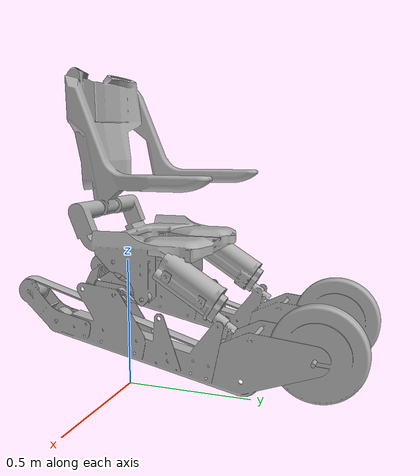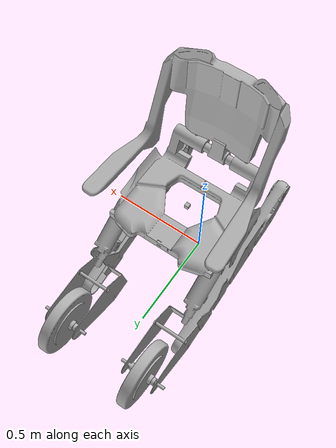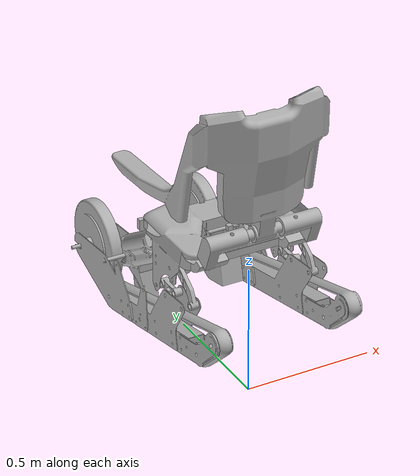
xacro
<?xml version="1.0" ?>
<robot name="robot" xmlns:xacro="http://www.ros.org/wiki/xacro">

<xacro:include filename="$(find wheelchair_isaac)/urdf/materials.xacro" />
<xacro:include filename="$(find wheelchair_isaac)/urdf/robot.trans" />
<xacro:include filename="$(find wheelchair_isaac)/urdf/robot.gazebo" />

<link name="base_footprint"/>

<link name="base_link">
  <inertial>
    <origin xyz="4.216737006355157e-05 0.14539775015650658 0.001317145519381857" rpy="0 0 0"/>
    <mass value="5.68537979998827"/>
    <inertia ixx="0.122934" iyy="0.179358" izz="0.285612" ixy="-3.1e-05" iyz="0.016444" ixz="6e-06"/>
  </inertial>
  <visual>
    <origin xyz="0 0 0" rpy="0 0 0"/>
    <geometry>
      <mesh filename="file://$(find wheelchair_isaac)/meshes/base_link.stl" scale="0.001 0.001 0.001"/>
    </geometry>
    <material name="silver"/>
  </visual>
  <collision>
    <origin xyz="0 0 0" rpy="0 0 0"/>
    <geometry>
      <mesh filename="file://$(find wheelchair_isaac)/meshes/base_link.stl" scale="0.001 0.001 0.001"/>
    </geometry>
  </collision>
</link>

<joint name="base_footprint_joint" type="fixed">
  <origin xyz="0 0 0.6" rpy="0 0 0"/>
  <parent link="base_footprint"/>
  <child link="base_link"/>
</joint>

<!-- IMU sensor link mounted at base_link center of mass -->
<link name="imu_link">
  <inertial>
    <origin xyz="0 0 0" rpy="0 0 0"/>
    <mass value="0.01"/>
    <inertia ixx="1e-06" iyy="1e-06" izz="1e-06" ixy="0" iyz="0" ixz="0"/>
  </inertial>
  <visual>
    <origin xyz="0 0 0" rpy="0 0 0"/>
    <geometry>
      <box size="0.02 0.02 0.02"/>
    </geometry>
    <material name="silver"/>
  </visual>
  <collision>
    <origin xyz="0 0 0" rpy="0 0 0"/>
    <geometry>
      <box size="0.02 0.02 0.02"/>
    </geometry>
  </collision>
</link>

<joint name="imu_joint" type="fixed">
  <origin xyz="0.0 0.145 0.001" rpy="0 0 0"/>
  <parent link="base_link"/>
  <child link="imu_link"/>
</joint>

<link name="link_1_1">
  <inertial>
    <origin xyz="0.029999999999997057 -0.05767110693379862 -0.04228443270435201" rpy="0 0 0"/>
    <mass value="0.22006973891227524"/>
    <inertia ixx="0.000725" iyy="0.000301" izz="0.000441" ixy="-0.0" iyz="-0.000324" ixz="-0.0"/>
  </inertial>
  <visual>
    <origin xyz="0.269 -0.0798 0.054998" rpy="0 0 0"/>
    <geometry>
      <mesh filename="file://$(find wheelchair_isaac)/meshes/link_1_1.stl" scale="0.001 0.001 0.001"/>
    </geometry>
    <material name="silver"/>
  </visual>
  <collision>
    <origin xyz="0.269 -0.0798 0.054998" rpy="0 0 0"/>
    <geometry>
      <mesh filename="file://$(find wheelchair_isaac)/meshes/link_1_1.stl" scale="0.001 0.001 0.001"/>
    </geometry>
  </collision>
</link>

<!-- track_left_1 first (incorrect) definition removed - duplicate caused by Fusion 360 loop export bug -->

<link name="left_wheel_1">
  <inertial>
    <origin xyz="0.07346889500880088 -2.88721996866137e-07 2.925630718242367e-07" rpy="0 0 0"/>
    <mass value="5.057776677564588"/>
    <inertia ixx="0.060549" iyy="0.031987" izz="0.031987" ixy="-0.0" iyz="0.0" ixz="0.0"/>
  </inertial>
  <visual>
    <origin xyz="0.284 -0.779417 0.322372" rpy="0 0 0"/>
    <geometry>
      <mesh filename="file://$(find wheelchair_isaac)/meshes/left_wheel_1.stl" scale="0.001 0.001 0.001"/>
    </geometry>
    <material name="silver"/>
  </visual>
  <collision>
    <origin xyz="0.284 -0.779417 0.322372" rpy="0 0 0"/>
    <geometry>
      <mesh filename="file://$(find wheelchair_isaac)/meshes/left_wheel_1.stl" scale="0.001 0.001 0.001"/>
    </geometry>
  </collision>
</link>

<link name="link_2_1">
  <inertial>
    <origin xyz="0.029999999999996974 -0.04053583985641179 0.00225104006153265" rpy="0 0 0"/>
    <mass value="0.15002189485578074"/>
    <inertia ixx="0.00025" iyy="2.8e-05" izz="0.000237" ixy="0.0" iyz="2.1e-05" ixz="-0.0"/>
  </inertial>
  <visual>
    <origin xyz="0.269 -0.185 0.179243" rpy="0 0 0"/>
    <geometry>
      <mesh filename="file://$(find wheelchair_isaac)/meshes/link_2_1.stl" scale="0.001 0.001 0.001"/>
    </geometry>
    <material name="silver"/>
  </visual>
  <collision>
    <origin xyz="0.269 -0.185 0.179243" rpy="0 0 0"/>
    <geometry>
      <mesh filename="file://$(find wheelchair_isaac)/meshes/link_2_1.stl" scale="0.001 0.001 0.001"/>
    </geometry>
  </collision>
</link>

<link name="link_1_right_1">
  <inertial>
    <origin xyz="-0.029999999999997085 -0.05767110693379844 -0.04228443270435229" rpy="0 0 0"/>
    <mass value="0.22006973891227521"/>
    <inertia ixx="0.000725" iyy="0.000301" izz="0.000441" ixy="-0.0" iyz="-0.000324" ixz="0.0"/>
  </inertial>
  <visual>
    <origin xyz="-0.269 -0.0798 0.054998" rpy="0 0 0"/>
    <geometry>
      <mesh filename="file://$(find wheelchair_isaac)/meshes/link_1_right_1.stl" scale="0.001 0.001 0.001"/>
    </geometry>
    <material name="silver"/>
  </visual>
  <collision>
    <origin xyz="-0.269 -0.0798 0.054998" rpy="0 0 0"/>
    <geometry>
      <mesh filename="file://$(find wheelchair_isaac)/meshes/link_1_right_1.stl" scale="0.001 0.001 0.001"/>
    </geometry>
  </collision>
</link>

<!-- track_right_1 first (incorrect) definition removed - duplicate caused by Fusion 360 loop export bug -->

<link name="link_2_right_1">
  <inertial>
    <origin xyz="-0.029999999999996918 -0.040535839856411765 0.002251040061532622" rpy="0 0 0"/>
    <mass value="0.15002189485578074"/>
    <inertia ixx="0.00025" iyy="2.8e-05" izz="0.000237" ixy="-0.0" iyz="2.1e-05" ixz="0.0"/>
  </inertial>
  <visual>
    <origin xyz="-0.269 -0.185 0.179243" rpy="0 0 0"/>
    <geometry>
      <mesh filename="file://$(find wheelchair_isaac)/meshes/link_2_right_1.stl" scale="0.001 0.001 0.001"/>
    </geometry>
    <material name="silver"/>
  </visual>
  <collision>
    <origin xyz="-0.269 -0.185 0.179243" rpy="0 0 0"/>
    <geometry>
      <mesh filename="file://$(find wheelchair_isaac)/meshes/link_2_right_1.stl" scale="0.001 0.001 0.001"/>
    </geometry>
  </collision>
</link>

<link name="right_wheel_1">
  <inertial>
    <origin xyz="-0.07346889500880088 -2.887219975322708e-07 2.9256307310099317e-07" rpy="0 0 0"/>
    <mass value="5.057776677564578"/>
    <inertia ixx="0.060549" iyy="0.031987" izz="0.031987" ixy="0.0" iyz="0.0" ixz="-0.0"/>
  </inertial>
  <visual>
    <origin xyz="-0.284 -0.779417 0.322372" rpy="0 0 0"/>
    <geometry>
      <mesh filename="file://$(find wheelchair_isaac)/meshes/right_wheel_1.stl" scale="0.001 0.001 0.001"/>
    </geometry>
    <material name="silver"/>
  </visual>
  <collision>
    <origin xyz="-0.284 -0.779417 0.322372" rpy="0 0 0"/>
    <geometry>
      <mesh filename="file://$(find wheelchair_isaac)/meshes/right_wheel_1.stl" scale="0.001 0.001 0.001"/>
    </geometry>
  </collision>
</link>

<link name="back_seat_1">
  <inertial>
    <origin xyz="0.06983014601031234 0.0575986230963668 0.25115136347369765" rpy="0 0 0"/>
    <mass value="8.434452375183655"/>
    <inertia ixx="0.328288" iyy="0.418377" izz="0.432904" ixy="8.5e-05" iyz="0.082281" ixz="4.4e-05"/>
  </inertial>
  <visual>
    <origin xyz="0.069733 0.090525 -0.103815" rpy="0 0 0"/>
    <geometry>
      <mesh filename="file://$(find wheelchair_isaac)/meshes/back_seat_1.stl" scale="0.001 0.001 0.001"/>
    </geometry>
    <material name="silver"/>
  </visual>
  <collision>
    <origin xyz="0.069733 0.090525 -0.103815" rpy="0 0 0"/>
    <geometry>
      <mesh filename="file://$(find wheelchair_isaac)/meshes/back_seat_1.stl" scale="0.001 0.001 0.001"/>
    </geometry>
  </collision>
</link>

<link name="track_left_1">
  <inertial>
    <origin xyz="-0.019524250228306478 0.14117949011930947 -0.07567975004266825" rpy="0 0 0"/>
    <mass value="11.29429483652691"/>
    <inertia ixx="0.94688" iyy="0.150812" izz="0.820835" ixy="-0.029005" iyz="0.041131" ixz="-0.003106"/>
  </inertial>
  <visual>
    <origin xyz="0.224 -0.088296 0.167372" rpy="0 0 0"/>
    <geometry>
      <mesh filename="file://$(find wheelchair_isaac)/meshes/track_left_1.stl" scale="0.001 0.001 0.001"/>
    </geometry>
    <material name="silver"/>
  </visual>
  <collision>
    <origin xyz="0.224 -0.088296 0.167372" rpy="0 0 0"/>
    <geometry>
      <mesh filename="file://$(find wheelchair_isaac)/meshes/track_left_1.stl" scale="0.001 0.001 0.001"/>
    </geometry>
  </collision>
</link>

<link name="track_right_1">
  <inertial>
    <origin xyz="0.019524250884706162 0.14117948537533326 -0.07567974729896407" rpy="0 0 0"/>
    <mass value="11.294294709414698"/>
    <inertia ixx="0.94688" iyy="0.150812" izz="0.820835" ixy="0.029005" iyz="0.041131" ixz="0.003106"/>
  </inertial>
  <visual>
    <origin xyz="-0.224 -0.088296 0.167372" rpy="0 0 0"/>
    <geometry>
      <mesh filename="file://$(find wheelchair_isaac)/meshes/track_right_1.stl" scale="0.001 0.001 0.001"/>
    </geometry>
    <material name="silver"/>
  </visual>
  <collision>
    <origin xyz="-0.224 -0.088296 0.167372" rpy="0 0 0"/>
    <geometry>
      <mesh filename="file://$(find wheelchair_isaac)/meshes/track_right_1.stl" scale="0.001 0.001 0.001"/>
    </geometry>
  </collision>
</link>

<joint name="base_to_link1_left" type="revolute">
  <origin xyz="-0.269 0.0798 -0.054998" rpy="0 0 0"/>
  <parent link="base_link"/>
  <child link="link_1_1"/>
  <axis xyz="-1.0 -0.0 -0.0"/>
  <limit lower="-1.5700" upper="0.0540" effort="100" velocity="1.0"/>
</joint>

<!-- link1_to_track_left joint REMOVED from URDF tree (creates kinematic loop). -->
<!-- Pin hole on link_1_1 (relative to link_1_1 frame): pos="0.045 -0.113272 -0.099807" -->

<joint name="wheel_left" type="continuous">
  <origin xyz="-0.06 0.691121 -0.155" rpy="0 0 0"/>
  <parent link="track_left_1"/>
  <child link="left_wheel_1"/>
  <axis xyz="-1.0 -0.0 -0.0"/>
</joint>

<joint name="base_to_link2_left" type="revolute">
  <origin xyz="-0.269 0.185 -0.179243" rpy="0 0 0"/>
  <parent link="base_link"/>
  <child link="link_2_1"/>
  <axis xyz="-1.0 -0.0 -0.0"/>
  <limit lower="-1.5700" upper="0.3170" effort="100" velocity="1.0"/>
</joint>

<joint name="base_to_link1_right" type="revolute">
  <origin xyz="0.269 0.0798 -0.054998" rpy="0 0 0"/>
  <parent link="base_link"/>
  <child link="link_1_right_1"/>
  <axis xyz="-1.0 0.0 0.0"/>
  <limit lower="-1.5700" upper="0.0610" effort="100" velocity="1.0"/>
</joint>

<!-- link1_to_track_right joint REMOVED from URDF tree (creates kinematic loop). -->
<!-- Pin hole on link_1_right_1 (relative to link_1_right_1 frame): pos="-0.045 -0.113272 -0.099807" -->

<joint name="base_to_link2_right" type="revolute">
  <origin xyz="0.269 0.185 -0.179243" rpy="0 0 0"/>
  <parent link="base_link"/>
  <child link="link_2_right_1"/>
  <axis xyz="-1.0 0.0 0.0"/>
  <limit lower="-1.5700" upper="0.3370" effort="100" velocity="1.0"/>
</joint>

<joint name="wheel_right" type="continuous">
  <origin xyz="0.06 0.691121 -0.155" rpy="0 0 0"/>
  <parent link="track_right_1"/>
  <child link="right_wheel_1"/>
  <axis xyz="-1.0 0.0 0.0"/>
</joint>

<joint name="base_to_backSeat" type="revolute">
  <origin xyz="-0.069733 -0.090525 0.103815" rpy="0 0 0"/>
  <parent link="base_link"/>
  <child link="back_seat_1"/>
  <axis xyz="1.0 0.0 0.0"/>
  <limit lower="0.0000" upper="0.0000" effort="200" velocity="1.0"/>
</joint>

<joint name="Revolute 38" type="continuous">
  <origin xyz="0.045 -0.096704 0.011871" rpy="0 0 0"/>
  <parent link="link_2_1"/>
  <child link="track_left_1"/>
  <axis xyz="-1.0 -0.0 -0.0"/>
</joint>

<joint name="Revolute 39" type="continuous">
  <origin xyz="-0.045 -0.096704 0.011871" rpy="0 0 0"/>
  <parent link="link_2_right_1"/>
  <child link="track_right_1"/>
  <axis xyz="-1.0 0.0 0.0"/>
</joint>

</robot>

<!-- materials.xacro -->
<robot name="my_bot_urdf" xmlns:xacro="http://www.ros.org/wiki/xacro" >

<material name="silver">
  <color rgba="0.700 0.700 0.700 1.000"/>
</material>

</robot>

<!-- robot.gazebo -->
<robot name="robot" xmlns:xacro="http://www.ros.org/wiki/xacro" >

<xacro:property name="body_color" value="Gazebo/Silver" />

<gazebo>
  <plugin filename="gz_ros2_control-system" name="gz_ros2_control::GazeboSimROS2ControlPlugin" />
</gazebo>

<gazebo reference="base_link">
  <material>${body_color}</material>
  <mu1>0.2</mu1>
  <mu2>0.2</mu2>
  <self_collide>true</self_collide>
  <gravity>true</gravity>
</gazebo>

<gazebo reference="link_1_1">
  <material>${body_color}</material>
  <mu1>0.2</mu1>
  <mu2>0.2</mu2>
  <self_collide>true</self_collide>
</gazebo>

<gazebo reference="track_left_1">
  <material>${body_color}</material>
  <mu1>0.2</mu1>
  <mu2>0.2</mu2>
  <self_collide>true</self_collide>
</gazebo>

<gazebo reference="left_wheel_1">
  <material>${body_color}</material>
  <mu1>0.2</mu1>
  <mu2>0.2</mu2>
  <self_collide>true</self_collide>
</gazebo>

<gazebo reference="link_2_1">
  <material>${body_color}</material>
  <mu1>0.2</mu1>
  <mu2>0.2</mu2>
  <self_collide>true</self_collide>
</gazebo>

<gazebo reference="link_1_right_1">
  <material>${body_color}</material>
  <mu1>0.2</mu1>
  <mu2>0.2</mu2>
  <self_collide>true</self_collide>
</gazebo>

<gazebo reference="track_right_1">
  <material>${body_color}</material>
  <mu1>0.2</mu1>
  <mu2>0.2</mu2>
  <self_collide>true</self_collide>
</gazebo>

<gazebo reference="link_2_right_1">
  <material>${body_color}</material>
  <mu1>0.2</mu1>
  <mu2>0.2</mu2>
  <self_collide>true</self_collide>
</gazebo>

<gazebo reference="right_wheel_1">
  <material>${body_color}</material>
  <mu1>0.2</mu1>
  <mu2>0.2</mu2>
  <self_collide>true</self_collide>
</gazebo>

<gazebo reference="back_seat_1">
  <material>${body_color}</material>
  <mu1>0.2</mu1>
  <mu2>0.2</mu2>
  <self_collide>true</self_collide>
</gazebo>

<gazebo reference="track_left_1">
  <material>${body_color}</material>
  <mu1>0.2</mu1>
  <mu2>0.2</mu2>
  <self_collide>true</self_collide>
</gazebo>

<gazebo reference="track_right_1">
  <material>${body_color}</material>
  <mu1>0.2</mu1>
  <mu2>0.2</mu2>
  <self_collide>true</self_collide>
</gazebo>

</robot>
